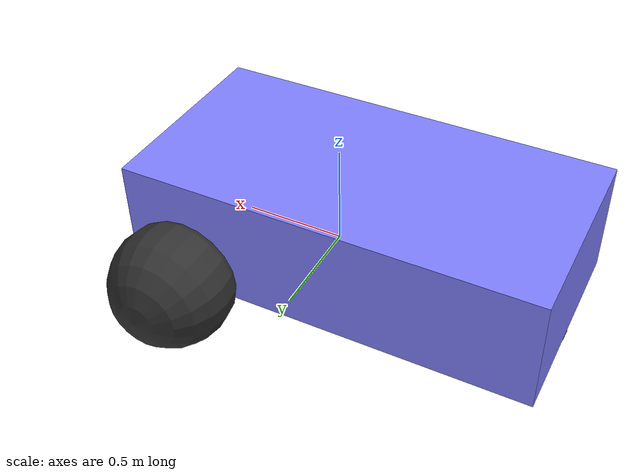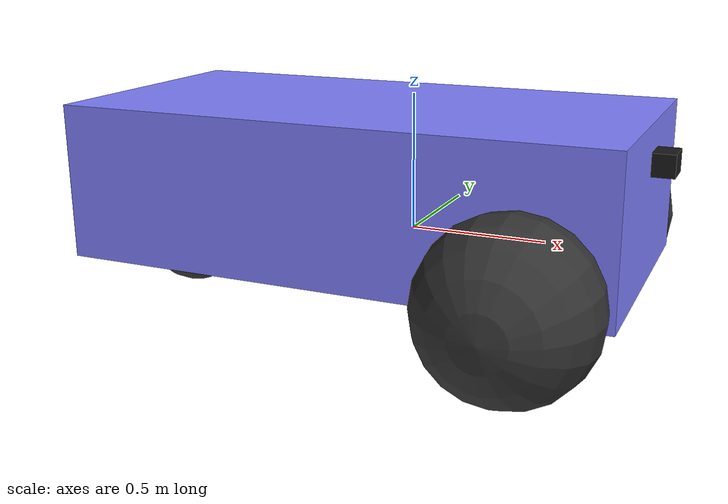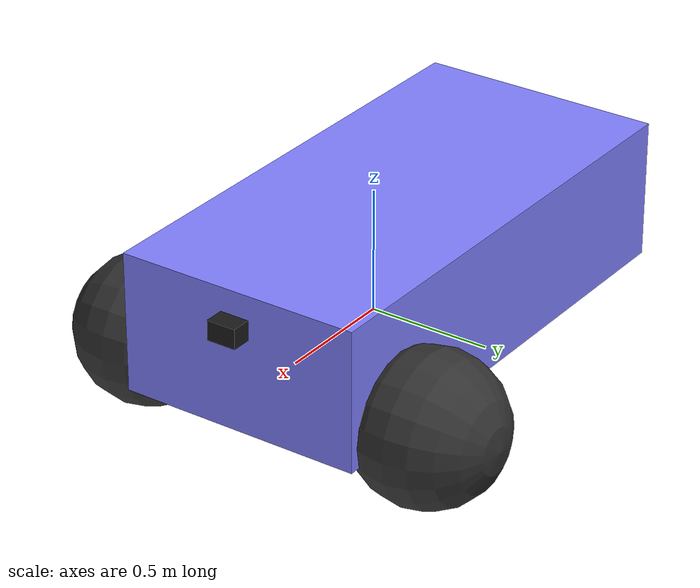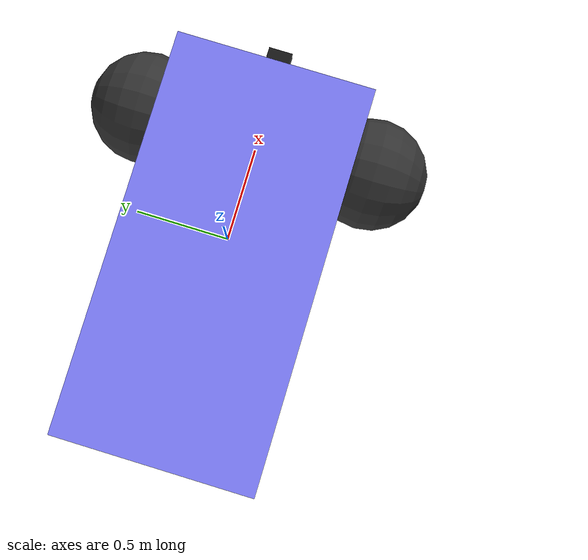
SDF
<?xml version="1.0" ?>
<sdf version='1.10'>
  <model name='vehicle_test'>
    <link name="chassis">
        <pose>-0.151427 -0 0.175 0 -0 0</pose>
        <inertial>
            <mass>1.14395</mass>
            <inertia>
                <ixx>0.126164</ixx>
                <ixy>0</ixy>
                <ixz>0</ixz>
                <iyy>0.416519</iyy>
                <iyz>0</iyz>
                <izz>0.481014</izz>
            </inertia>
        </inertial>
        <visual name="visual_chassis">
            <geometry>
                <box>
                <size>2.01142 1 0.568726</size>
                </box>
            </geometry>
            <material>
                <ambient>0.5 0.5 1.0 1</ambient>
                <diffuse>0.5 0.5 1.0 1</diffuse>
                <specular>0.0 0.0 1.0 1</specular>
            </material>
        </visual>
        <collision name="collision_chassis">
            <geometry>
                <box>
                <size>2.01142 1 0.568726</size>
                </box>
            </geometry>
        </collision>
    </link>

    <link name='left_wheel'>
        <pose>0.554283 0.625029 -0.025 -1.5707 0 0</pose>
        <inertial>
          <mass>2</mass>
          <inertia>
            <ixx>0.145833</ixx>
            <ixy>0</ixy>
            <ixz>0</ixz>
            <iyy>0.145833</iyy>
            <iyz>0</iyz>
            <izz>0.125</izz>
          </inertia>
        </inertial>
        <visual name='visual_left_wheel'>
          <geometry>
            <sphere>
              <radius>0.3</radius>
            </sphere>
          </geometry>
          <material>
            <ambient>0.2 0.2 0.2 1</ambient>
            <diffuse>0.2 0.2 0.2 1</diffuse>
            <specular>0.2 0.2 0.2 1</specular>
          </material>
        </visual>
        <collision name='collision_left_wheel'>
          <geometry>
            <sphere>
              <radius>0.3</radius>
            </sphere>
          </geometry>
        </collision>
    </link>

    <link name='right_wheel'>
        <pose>0.554282 -0.625029 -0.025 -1.5707 0 0</pose>
        <inertial>
            <mass>2</mass>
            <inertia>
            <ixx>0.145833</ixx>
            <ixy>0</ixy>
            <ixz>0</ixz>
            <iyy>0.145833</iyy>
            <iyz>0</iyz>
            <izz>0.125</izz>
            </inertia>
        </inertial>
        <visual name='visual_right_wheel'>
            <geometry>
            <sphere>
                <radius>0.3</radius>
            </sphere>
            </geometry>
            <material>
            <ambient>0.2 0.2 0.2 1</ambient>
            <diffuse>0.2 0.2 0.2 1</diffuse>
            <specular>0.2 0.2 0.2 1</specular>
            </material>
        </visual>
        <collision name='collision_right_wheel'>
            <geometry>
            <sphere>
                <radius>0.3</radius>
            </sphere>
            </geometry>
        </collision>
    </link>

    <link name='caster'>
        <pose>-0.957138 -0 -0.125 0 -0 0</pose>
        <inertial>
            <mass>1</mass>
            <inertia>
            <ixx>0.1</ixx>
            <ixy>0</ixy>
            <ixz>0</ixz>
            <iyy>0.1</iyy>
            <iyz>0</iyz>
            <izz>0.1</izz>
            </inertia>
        </inertial>
        <visual name='visual_caster'>
            <geometry>
            <sphere>
                <radius>0.2</radius>
            </sphere>
            </geometry>
            <material>
            <ambient>0.2 0.2 0.2 1</ambient>
            <diffuse>0.2 0.2 0.2 1</diffuse>
            <specular>0.2 0.2 0.2 1</specular>
            </material>
        </visual>
        <collision name='collision_caster'>
            <geometry>
            <sphere>
                <radius>0.2</radius>
            </sphere>
            </geometry>
        </collision>
    </link>

    <link name="camera_link">
        <pose relative_to="chassis">1.05 0 0.15 0 0 0</pose>

        <inertial>
            <mass>0.05</mass>
            <inertia>
                <ixx>0.0001</ixx>
                <ixy>0</ixy>
                <ixz>0</ixz>
                <iyy>0.0001</iyy>
                <iyz>0</iyz>
                <izz>0.0001</izz>
            </inertia>
        </inertial>
        <visual name="camera_visual">
            <geometry>
                <box>
                    <size>0.08 0.12 0.08</size>
                </box>
            </geometry>
            <material>
                <ambient>0.1 0.1 0.1 1</ambient>
                <diffuse>0.1 0.1 0.1 1</diffuse>
                <specular>0.2 0.2 0.2 1</specular>
            </material>
        </visual>
        <collision name="camera_collision">
            <geometry>
                <box>
                    <size>0.08 0.12 0.08</size>
                </box>
            </geometry>
        </collision>
        <sensor name="front_camera" type="camera">
            <pose>0.04 0 0 0 0 0</pose>
            <always_on>true</always_on>
            <update_rate>30</update_rate>
            <visualize>true</visualize>
            <topic>/model/vehicle_test/camera/image</topic>
            <camera>
                <horizontal_fov>1.0472</horizontal_fov>
                <image>
                    <width>640</width>
                    <height>480</height>
                    <format>R8G8B8</format>
                </image>
                <clip>
                    <near>0.05</near>
                    <far>100.0</far>
                </clip>
            </camera>
        </sensor>
    </link>

    <joint name='left_wheel_joint' type='revolute'>
        <parent>chassis</parent>
        <child>left_wheel</child>
        <axis>
            <xyz>0 0 1</xyz>
            <limit>
            <lower>-1.79769e+308</lower>
            <upper>1.79769e+308</upper>
            </limit>
        </axis>
    </joint>

    <joint name='right_wheel_joint' type='revolute'>
        <parent>chassis</parent>
        <child>right_wheel</child>
        <axis>
            <xyz>0 0 1</xyz>
            <limit>
            <lower>-1.79769e+308</lower>
            <upper>1.79769e+308</upper>
            </limit>
        </axis>
    </joint>

    <joint name='caster_wheel' type='ball'>
        <parent>chassis</parent>
        <child>caster</child>
    </joint>

    <joint name="camera_joint" type="fixed">
        <parent>chassis</parent>
        <child>camera_link</child>
    </joint>

    <plugin filename="gz-sim-diff-drive-system" name="gz::sim::systems::DiffDrive">
        <left_joint>left_wheel_joint</left_joint>
        <right_joint>right_wheel_joint</right_joint>
        <wheel_separation>1.25</wheel_separation>
        <wheel_radius>0.3</wheel_radius>
        <odom_publish_frequency>1</odom_publish_frequency>
        <max_linear_acceleration>1</max_linear_acceleration>
        <min_linear_acceleration>-1</min_linear_acceleration>
        <max_angular_acceleration>2</max_angular_acceleration>
        <min_angular_acceleration>-2</min_angular_acceleration>
        <max_linear_velocity>0.5</max_linear_velocity>
        <min_linear_velocity>-0.5</min_linear_velocity>
        <max_angular_velocity>1</max_angular_velocity>
        <min_angular_velocity>-1</min_angular_velocity>
    </plugin>
    <plugin filename="gz-sim-joint-state-publisher-system" name="gz::sim::systems::JointStatePublisher">
        <topic>/model/vehicle_test/joint_state</topic>
    </plugin>
  </model>
</sdf>
